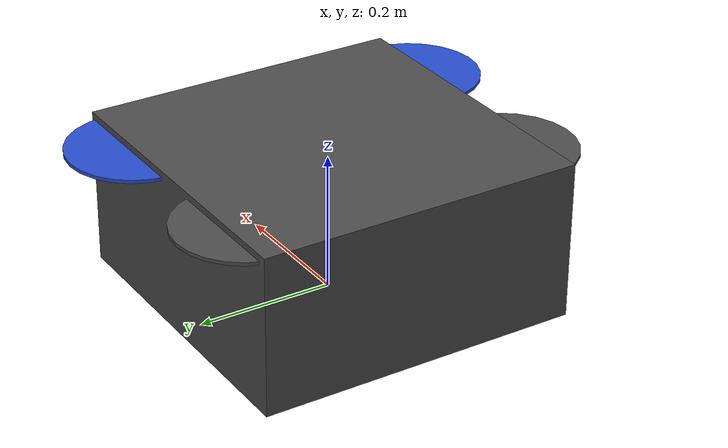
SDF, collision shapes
<?xml version='1.0'?>
<sdf version="1.9">
  <model name="iris_with_ardupilot_with_sensor">
    <include>
      <uri>model://iris_with_standoffs</uri>
    </include>

    <link name='base_link'>
      <pose>0 0 0 0 0 0</pose>
      <inertial>
        <mass>1.0</mass>
        <inertia>
          <ixx>0.1</ixx>
          <iyy>0.1</iyy>
          <izz>0.1</izz>
        </inertia>
      </inertial>
      <collision name='collision'>
        <geometry>
          <box>
            <size>0.1 0.1 0.1</size>
          </box>
        </geometry>
      </collision>
      <visual name='visual'>
        <geometry>
          <box>
            <size>0.1 0.1 0.1</size>
          </box>
        </geometry>
      </visual>
    </link>

	<link name='lidar_link'>
	  <pose relative_to='lidar_joint'>0 0 0 0 0 0</pose>
      <inertial>
        <pose>0 0 0 0 0 0</pose>
        <mass>0.15</mass>
        <inertia>
          <ixx>9.09375e-05</ixx>
          <ixy>0</ixy>
          <ixz>0</ixz>
          <iyy>9.09375e-05</iyy>
          <iyz>0</iyz>
          <izz>9.1875e-05</izz>
        </inertia>
      </inertial>
      <collision name='collision'>
        <pose>0 0 0 0 0 0</pose>
        <geometry>
          <cylinder>
            <length>0.06</length>
            <radius>0.035</radius>
          </cylinder>
        </geometry>
      </collision>

      <sensor name='lidar' type='gpu_lidar'>
        <always_on>1</always_on>
        <update_rate>5</update_rate>
        <visualize>1</visualize>
        <topic>lidar_link/sensor/lidar</topic>
        <pose>0 0 0.045 0 -0 0</pose>
        <ray>
          <scan>
            <horizontal>
              <samples>360</samples>
              <resolution>1</resolution>
              <min_angle>0</min_angle>
              <max_angle>6.28319</max_angle>
            </horizontal>
            <vertical>
              <samples>1</samples>
              <resolution>1</resolution>
              <min_angle>0</min_angle>
              <max_angle>0</max_angle>
            </vertical>
          </scan>
          <range>
            <min>0.1</min>
            <max>12</max>
            <resolution>0.05</resolution>
          </range>
          <noise>
            <type>gaussian</type>
            <mean>0</mean>
            <stddev>0.01</stddev>
          </noise>
        </ray>
      </sensor>
    </link>

  <joint name='lidar_joint' type='revolute'>
      <pose relative_to='base_link'>0.11 0 0.03 0 0 0</pose>
      <parent>base_link</parent>
      <child>lidar_link</child>
      <axis>
        <xyz>0 0 1</xyz>
        <limit>
          <lower>0</lower>
          <upper>0</upper>
          <effort>0</effort>
          <velocity>0</velocity>
        </limit>
        <dynamics>
          <damping>1.0</damping>
        </dynamics>

    </axis>
    </joint>

    <link name='sonar_front_link'>
      <pose relative_to='sonar_front_joint'>0 0 0 0 0 0</pose>
      <inertial>
        <pose>0 0 0 0 0 0</pose>
        <mass>0.02</mass>
        <inertia>
          <ixx>3.04167e-06</ixx>
          <ixy>0</ixy>
          <ixz>0</ixz>
          <iyy>7.5e-07</iyy>
          <iyz>0</iyz>
          <izz>3.04167e-06</izz>
        </inertia>
      </inertial>
      <collision name='collision'>
        <pose>0 0 0 0 0 0</pose>
        <geometry>
          <box>
            <size>0.015 0.04 0.015</size>
          </box>
        </geometry>
      </collision>

      <sensor name='sonar' type='gpu_lidar'>
        <always_on>1</always_on>
        <update_rate>20</update_rate>
        <visualize>1</visualize>
        <topic>sonar_front_link/sensor/sonar</topic>
        <pose>0 0 0 0 0 0</pose>
        <ray>
          <scan>
            <horizontal>
              <samples>5</samples>
              <resolution>1</resolution>
              <min_angle>-0.14835</min_angle>
              <max_angle>0.14835</max_angle>
            </horizontal>
            <vertical>
              <samples>3</samples>
              <resolution>1</resolution>
              <min_angle>0</min_angle>
              <max_angle>0.14835</max_angle>
            </vertical>
          </scan>
          <range>
            <min>0.01</min>
            <max>4</max>
            <resolution>0.02</resolution>
          </range>
          <noise>
            <type>gaussian</type>
            <mean>0.1</mean>
            <stddev>0.005</stddev>
          </noise>
        </ray>
      </sensor>
    </link>

    <joint name='sonar_front_joint' type='revolute'>
    <pose relative_to='base_link'>0.225 0 0.01 0 0 0</pose>
      <parent>base_link</parent>
      <child>sonar_front_link</child>
      <axis>
        <xyz>0 0 1</xyz>
        <limit>
          <lower>0</lower>
          <upper>0</upper>
          <effort>0</effort>
          <velocity>0</velocity>
        </limit>
        <dynamics>
          <damping>1.0</damping>
        </dynamics>

      </axis>
    </joint>

    <!-- plugins -->
    <plugin filename="gz-sim-joint-state-publisher-system"
      name="gz::sim::systems::JointStatePublisher">
    </plugin>
    <plugin filename="gz-sim-lift-drag-system"
        name="gz::sim::systems::LiftDrag">
      <a0>0.3</a0>
      <alpha_stall>1.4</alpha_stall>
      <cla>4.2500</cla>
      <cda>0.10</cda>
      <cma>0.0</cma>
      <cla_stall>-0.025</cla_stall>
      <cda_stall>0.0</cda_stall>
      <cma_stall>0.0</cma_stall>
      <area>0.002</area>
      <air_density>1.2041</air_density>
      <cp>0.084 0 0</cp>
      <forward>0 1 0</forward>
      <upward>0 0 1</upward>
      <link_name>iris_with_standoffs::rotor_0</link_name>
    </plugin>
    <plugin filename="gz-sim-lift-drag-system"
        name="gz::sim::systems::LiftDrag">
      <a0>0.3</a0>
      <alpha_stall>1.4</alpha_stall>
      <cla>4.2500</cla>
      <cda>0.10</cda>
      <cma>0.0</cma>
      <cla_stall>-0.025</cla_stall>
      <cda_stall>0.0</cda_stall>
      <cma_stall>0.0</cma_stall>
      <area>0.002</area>
      <air_density>1.2041</air_density>
      <cp>-0.084 0 0</cp>
      <forward>0 -1 0</forward>
      <upward>0 0 1</upward>
      <link_name>iris_with_standoffs::rotor_0</link_name>
    </plugin>

    <plugin filename="gz-sim-lift-drag-system"
        name="gz::sim::systems::LiftDrag">
      <a0>0.3</a0>
      <alpha_stall>1.4</alpha_stall>
      <cla>4.2500</cla>
      <cda>0.10</cda>
      <cma>0.0</cma>
      <cla_stall>-0.025</cla_stall>
      <cda_stall>0.0</cda_stall>
      <cma_stall>0.0</cma_stall>
      <area>0.002</area>
      <air_density>1.2041</air_density>
      <cp>0.084 0 0</cp>
      <forward>0 1 0</forward>
      <upward>0 0 1</upward>
      <link_name>iris_with_standoffs::rotor_1</link_name>
    </plugin>
    <plugin filename="gz-sim-lift-drag-system"
        name="gz::sim::systems::LiftDrag">
      <a0>0.3</a0>
      <alpha_stall>1.4</alpha_stall>
      <cla>4.2500</cla>
      <cda>0.10</cda>
      <cma>0.0</cma>
      <cla_stall>-0.025</cla_stall>
      <cda_stall>0.0</cda_stall>
      <cma_stall>0.0</cma_stall>
      <area>0.002</area>
      <air_density>1.2041</air_density>
      <cp>-0.084 0 0</cp>
      <forward>0 -1 0</forward>
      <upward>0 0 1</upward>
      <link_name>iris_with_standoffs::rotor_1</link_name>
    </plugin>

    <plugin filename="gz-sim-lift-drag-system"
        name="gz::sim::systems::LiftDrag">
      <a0>0.3</a0>
      <alpha_stall>1.4</alpha_stall>
      <cla>4.2500</cla>
      <cda>0.10</cda>
      <cma>0.0</cma>
      <cla_stall>-0.025</cla_stall>
      <cda_stall>0.0</cda_stall>
      <cma_stall>0.0</cma_stall>
      <area>0.002</area>
      <air_density>1.2041</air_density>
      <cp>0.084 0 0</cp>
      <forward>0 -1 0</forward>
      <upward>0 0 1</upward>
      <link_name>iris_with_standoffs::rotor_2</link_name>
    </plugin>
    <plugin filename="gz-sim-lift-drag-system"
        name="gz::sim::systems::LiftDrag">
      <a0>0.3</a0>
      <alpha_stall>1.4</alpha_stall>
      <cla>4.2500</cla>
      <cda>0.10</cda>
      <cma>0.0</cma>
      <cla_stall>-0.025</cla_stall>
      <cda_stall>0.0</cda_stall>
      <cma_stall>0.0</cma_stall>
      <area>0.002</area>
      <air_density>1.2041</air_density>
      <cp>-0.084 0 0</cp>
      <forward>0 1 0</forward>
      <upward>0 0 1</upward>
      <link_name>iris_with_standoffs::rotor_2</link_name>
    </plugin>

    <plugin filename="gz-sim-lift-drag-system"
        name="gz::sim::systems::LiftDrag">
      <a0>0.3</a0>
      <alpha_stall>1.4</alpha_stall>
      <cla>4.2500</cla>
      <cda>0.10</cda>
      <cma>0.0</cma>
      <cla_stall>-0.025</cla_stall>
      <cda_stall>0.0</cda_stall>
      <cma_stall>0.0</cma_stall>
      <area>0.002</area>
      <air_density>1.2041</air_density>
      <cp>0.084 0 0</cp>
      <forward>0 -1 0</forward>
      <upward>0 0 1</upward>
      <link_name>iris_with_standoffs::rotor_3</link_name>
    </plugin>
    <plugin filename="gz-sim-lift-drag-system"
        name="gz::sim::systems::LiftDrag">
      <a0>0.3</a0>
      <alpha_stall>1.4</alpha_stall>
      <cla>4.2500</cla>
      <cda>0.10</cda>
      <cma>0.0</cma>
      <cla_stall>-0.025</cla_stall>
      <cda_stall>0.0</cda_stall>
      <cma_stall>0.0</cma_stall>
      <area>0.002</area>
      <air_density>1.2041</air_density>
      <cp>-0.084 0 0</cp>
      <forward>0 1 0</forward>
      <upward>0 0 1</upward>
      <link_name>iris_with_standoffs::rotor_3</link_name>
    </plugin>

    <plugin filename="gz-sim-apply-joint-force-system"
      name="gz::sim::systems::ApplyJointForce">
      <joint_name>iris_with_standoffs::rotor_0_joint</joint_name>
    </plugin>
    <plugin filename="gz-sim-apply-joint-force-system"
      name="gz::sim::systems::ApplyJointForce">
      <joint_name>iris_with_standoffs::rotor_1_joint</joint_name>
    </plugin>
    <plugin filename="gz-sim-apply-joint-force-system"
      name="gz::sim::systems::ApplyJointForce">
      <joint_name>iris_with_standoffs::rotor_2_joint</joint_name>
    </plugin>
    <plugin filename="gz-sim-apply-joint-force-system"
      name="gz::sim::systems::ApplyJointForce">
      <joint_name>iris_with_standoffs::rotor_3_joint</joint_name>
    </plugin>

    <plugin name="ArduPilotPlugin"
      filename="ArduPilotPlugin">
      <!-- Port settings -->
      <fdm_addr>127.0.0.1</fdm_addr>
      <fdm_port_in>9002</fdm_port_in>
      <connectionTimeoutMaxCount>5</connectionTimeoutMaxCount>
      <lock_step>1</lock_step>
      <have_32_channels>0</have_32_channels>

      <!-- Frame conventions
        Require by ArduPilot: change model and gazebo from XYZ to XY-Z coordinates
      -->
      <modelXYZToAirplaneXForwardZDown degrees="true">0 0 0 180 0 0</modelXYZToAirplaneXForwardZDown>
      <gazeboXYZToNED degrees="true">0 0 0 180 0 90</gazeboXYZToNED>

      <!-- Sensors -->

      <!-- Sensors -->
      <!-- Sensors -->
      <imuName>iris_with_standoffs::imu_link::imu_sensor</imuName>

      <!--
          incoming control command [0, 1]
          so offset it by 0 to get [0, 1]
          and divide max target by 1.
          offset = 0
          multiplier = 838 max rpm / 1 = 838
        -->
      <control channel="0">
        <jointName>iris_with_standoffs::rotor_0_joint</jointName>
        <useForce>1</useForce>
        <multiplier>838</multiplier>
        <offset>0</offset>
        <servo_min>1100</servo_min>
        <servo_max>1900</servo_max>
        <type>VELOCITY</type>
        <p_gain>0.20</p_gain>
        <i_gain>0</i_gain>
        <d_gain>0</d_gain>
        <i_max>0</i_max>
        <i_min>0</i_min>
        <cmd_max>2.5</cmd_max>
        <cmd_min>-2.5</cmd_min>
        <controlVelocitySlowdownSim>1</controlVelocitySlowdownSim>
      </control>

      <control channel="1">
        <jointName>iris_with_standoffs::rotor_1_joint</jointName>
        <useForce>1</useForce>
        <multiplier>838</multiplier>
        <offset>0</offset>
        <servo_min>1100</servo_min>
        <servo_max>1900</servo_max>
        <type>VELOCITY</type>
        <p_gain>0.20</p_gain>
        <i_gain>0</i_gain>
        <d_gain>0</d_gain>
        <i_max>0</i_max>
        <i_min>0</i_min>
        <cmd_max>2.5</cmd_max>
        <cmd_min>-2.5</cmd_min>
        <controlVelocitySlowdownSim>1</controlVelocitySlowdownSim>
      </control>

      <control channel="2">
        <jointName>iris_with_standoffs::rotor_2_joint</jointName>
        <useForce>1</useForce>
        <multiplier>-838</multiplier>
        <offset>0</offset>
        <servo_min>1100</servo_min>
        <servo_max>1900</servo_max>
        <type>VELOCITY</type>
        <p_gain>0.20</p_gain>
        <i_gain>0</i_gain>
        <d_gain>0</d_gain>
        <i_max>0</i_max>
        <i_min>0</i_min>
        <cmd_max>2.5</cmd_max>
        <cmd_min>-2.5</cmd_min>
        <controlVelocitySlowdownSim>1</controlVelocitySlowdownSim>
      </control>

      <control channel="3">
        <jointName>iris_with_standoffs::rotor_3_joint</jointName>
        <useForce>1</useForce>
        <multiplier>-838</multiplier>
        <offset>0</offset>
        <servo_min>1100</servo_min>
        <servo_max>1900</servo_max>
        <type>VELOCITY</type>
        <p_gain>0.20</p_gain>
        <i_gain>0</i_gain>
        <d_gain>0</d_gain>
        <i_max>0</i_max>
        <i_min>0</i_min>
        <cmd_max>2.5</cmd_max>
        <cmd_min>-2.5</cmd_min>
        <controlVelocitySlowdownSim>1</controlVelocitySlowdownSim>
      </control>
          </plugin>

      <sensor>
        <type>sonar</type>
        <index>1</index>
        <topic>sonar_front_link/sensor/sonar</topic>
      </sensor>

  </model>
</sdf>

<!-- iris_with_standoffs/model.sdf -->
<sdf version='1.6'>
  <model name='iris'>
    <pose>0 0 0.194923 0 0 0</pose>
    <link name='base_link'>
      <velocity_decay>
        <linear>0.0</linear>
        <angular>0.0</angular>
      </velocity_decay>
      <inertial>
        <pose>0 0 0 0 0 0</pose>
        <mass>1.5</mass>
        <inertia>
          <ixx>0.008</ixx>
          <ixy>0</ixy>
          <ixz>0</ixz>
          <iyy>0.015</iyy>
          <iyz>0</iyz>
          <izz>0.017</izz>
        </inertia>
      </inertial>
      <collision name='base_link_collision'>
        <pose>0 0 -0.08 0 0 0</pose>
        <geometry>
          <box>
            <size>0.47 0.47 0.23</size>
          </box>
        </geometry>
        <surface>
          <contact>
            <ode>
              <max_vel>100.0</max_vel>
              <min_depth>0.001</min_depth>
            </ode>
          </contact>
          <friction>
            <ode>
              <mu>1.0</mu>
              <mu2>1.0</mu2>
            </ode>
          </friction>
        </surface>
      </collision>
      <visual name='base_link_visual'>
        <geometry>
          <mesh>
            <uri>model://../model_source/models/iris_with_standoffs/meshes/iris.dae</uri>
          </mesh>
        </geometry>
        <material>
          <script>
            <name>Gazebo/DarkGrey</name>
          </script>
        </material>
      </visual>

      <visual name='front_left_leg_visual'>
        <pose>0.123 0.22 -0.11 0 0 0</pose>
        <geometry>
          <cylinder>
            <radius>0.005</radius>
            <length>0.17</length>
          </cylinder>
        </geometry>
        <material>
          <script>
            <name>Gazebo/FlatBlack</name>
            <uri>file://media/materials/scripts/gazebo.material</uri>
          </script>
        </material>
      </visual>
      <visual name='front_right_leg_visual'>
        <pose>0.123 -0.22 -0.11 0 0 0</pose>
        <geometry>
          <cylinder>
            <radius>0.005</radius>
            <length>0.17</length>
          </cylinder>
        </geometry>
        <material>
          <script>
            <name>Gazebo/FlatBlack</name>
            <uri>file://media/materials/scripts/gazebo.material</uri>
          </script>
        </material>
      </visual>
      <visual name='rear_left_leg_visual'>
        <pose>-0.140 0.21 -0.11 0 0 0</pose>
        <geometry>
          <cylinder>
            <radius>0.005</radius>
            <length>0.17</length>
          </cylinder>
        </geometry>
        <material>
          <script>
            <name>Gazebo/FlatBlack</name>
            <uri>file://media/materials/scripts/gazebo.material</uri>
          </script>
        </material>
      </visual>
      <visual name='rear_right_leg_visual'>
        <pose>-0.140 -0.21 -0.11 0 0 0</pose>
        <geometry>
          <cylinder>
            <radius>0.005</radius>
            <length>0.17</length>
          </cylinder>
        </geometry>
        <material>
          <script>
            <name>Gazebo/FlatBlack</name>
            <uri>file://media/materials/scripts/gazebo.material</uri>
          </script>
        </material>
      </visual>
    </link>
    <link name='iris/ground_truth/odometry_sensorgt_link'>
      <pose>0 0 0 0 -0 0</pose>
      <inertial>
        <pose>0 0 0 0 -0 0</pose>
        <mass>0.15</mass>
        <inertia>
          <ixx>0.0001</ixx>
          <ixy>0</ixy>
          <ixz>0</ixz>
          <iyy>0.0002</iyy>
          <iyz>0</iyz>
          <izz>0.0002</izz>
        </inertia>
      </inertial>
    </link>
    <joint name='iris/ground_truth/odometry_sensorgt_joint' type='revolute'>
      <child>iris/ground_truth/odometry_sensorgt_link</child>
      <parent>base_link</parent>
      <axis>
        <xyz>0 0 1</xyz>
        <limit>
          <lower>0</lower>
          <upper>0</upper>
          <effort>0</effort>
          <velocity>0</velocity>
        </limit>
        <dynamics>
          <damping>1.0</damping>
        </dynamics>
        <use_parent_model_frame>1</use_parent_model_frame>
      </axis>
      <physics>
        <ode>
          <implicit_spring_damper>1</implicit_spring_damper>
        </ode>
      </physics>
    </joint>
    <link name='iris/imu_link'>
      <inertial>
        <pose>0 0 0 0 0 0</pose>
        <mass>0.15</mass>
        <inertia>
          <ixx>0.00001</ixx>
          <ixy>0</ixy>
          <ixz>0</ixz>
          <iyy>0.00002</iyy>
          <iyz>0</iyz>
          <izz>0.00002</izz>
        </inertia>
      </inertial>
      <sensor name="imu_sensor" type="imu">
        <pose>0 0 0 3.141593 0 0</pose>
        <always_on>1</always_on>
        <update_rate>1000.0</update_rate>
      </sensor>
    </link>
    <joint name='iris/imu_joint' type='revolute'>
      <child>iris/imu_link</child>
      <parent>base_link</parent>
      <axis>
        <xyz>0 0 1</xyz>
        <limit>
          <lower>0</lower>
          <upper>0</upper>
          <effort>0</effort>
          <velocity>0</velocity>
        </limit>
        <dynamics>
          <damping>1.0</damping>
        </dynamics>
        <use_parent_model_frame>1</use_parent_model_frame>
      </axis>
      <physics>
        <ode>
          <implicit_spring_damper>1</implicit_spring_damper>
        </ode>
      </physics>
    </joint>
    <link name='rotor_0'>
      <pose>0.13 -0.22 0.023 0 -0 0</pose>
      <inertial>
        <pose>0 0 0 0 -0 0</pose>
        <mass>0.025</mass>
        <inertia>
          <ixx>9.75e-06</ixx>
          <ixy>0</ixy>
          <ixz>0</ixz>
          <iyy>0.000166704</iyy>
          <iyz>0</iyz>
          <izz>0.000167604</izz>
        </inertia>
      </inertial>
      <collision name='rotor_0_collision'>
        <pose>0 0 0 0 -0 0</pose>
        <geometry>
          <cylinder>
            <length>0.005</length>
            <radius>0.1</radius>
          </cylinder>
        </geometry>
        <surface>
          <contact>
            <ode/>
          </contact>
          <friction>
            <ode/>
          </friction>
        </surface>
      </collision>
      <visual name='rotor_0_visual'>
        <pose>0 0 0 0 -0 0</pose>
        <geometry>
          <mesh>
            <scale>1 1 1</scale>
            <uri>model://../model_source/models/iris_with_standoffs/meshes/iris_prop_ccw.dae</uri>
          </mesh>
        </geometry>
        <material>
          <script>
            <name>Gazebo/Blue</name>
            <uri>__default__</uri>
          </script>
        </material>
      </visual>
      <gravity>1</gravity>
      <velocity_decay/>
      <self_collide>0</self_collide>
    </link>
    <joint name='rotor_0_joint' type='revolute'>
      <child>rotor_0</child>
      <parent>base_link</parent>
      <axis>
        <xyz>0 0 1</xyz>
        <limit>
          <lower>-1e+16</lower>
          <upper>1e+16</upper>
        </limit>
        <dynamics>
          <damping>0.004</damping>
        </dynamics>
        <use_parent_model_frame>1</use_parent_model_frame>
      </axis>
      <physics>
        <ode>
          <implicit_spring_damper>1</implicit_spring_damper>
        </ode>
      </physics>
    </joint>
    <link name='rotor_1'>
      <pose>-0.13 0.2 0.023 0 -0 0</pose>
      <inertial>
        <pose>0 0 0 0 -0 0</pose>
        <mass>0.025</mass>
        <inertia>
          <ixx>9.75e-06</ixx>
          <ixy>0</ixy>
          <ixz>0</ixz>
          <iyy>0.000166704</iyy>
          <iyz>0</iyz>
          <izz>0.000167604</izz>
        </inertia>
      </inertial>
      <collision name='rotor_1_collision'>
        <pose>0 0 0 0 -0 0</pose>
        <geometry>
          <cylinder>
            <length>0.005</length>
            <radius>0.1</radius>
          </cylinder>
        </geometry>
        <surface>
          <contact>
            <ode/>
          </contact>
          <friction>
            <ode/>
          </friction>
        </surface>
      </collision>
      <visual name='rotor_1_visual'>
        <pose>0 0 0 0 -0 0</pose>
        <geometry>
          <mesh>
            <scale>1 1 1</scale>
            <uri>model://../model_source/models/iris_with_standoffs/meshes/iris_prop_ccw.dae</uri>
          </mesh>
        </geometry>
        <material>
          <script>
            <name>Gazebo/DarkGrey</name>
            <uri>__default__</uri>
          </script>
        </material>
      </visual>
      <gravity>1</gravity>
      <velocity_decay/>
      <self_collide>0</self_collide>
    </link>
    <joint name='rotor_1_joint' type='revolute'>
      <child>rotor_1</child>
      <parent>base_link</parent>
      <axis>
        <xyz>0 0 1</xyz>
        <limit>
          <lower>-1e+16</lower>
          <upper>1e+16</upper>
        </limit>
        <dynamics>
          <damping>0.004</damping>
        </dynamics>
        <use_parent_model_frame>1</use_parent_model_frame>
      </axis>
      <physics>
        <ode>
          <implicit_spring_damper>1</implicit_spring_damper>
        </ode>
      </physics>
    </joint>
    <link name='rotor_2'>
      <pose>0.13 0.22 0.023 0 -0 0</pose>
      <inertial>
        <pose>0 0 0 0 -0 0</pose>
        <mass>0.025</mass>
        <inertia>
          <ixx>9.75e-06</ixx>
          <ixy>0</ixy>
          <ixz>0</ixz>
          <iyy>0.000166704</iyy>
          <iyz>0</iyz>
          <izz>0.000167604</izz>
        </inertia>
      </inertial>
      <collision name='rotor_2_collision'>
        <pose>0 0 0 0 -0 0</pose>
        <geometry>
          <cylinder>
            <length>0.005</length>
            <radius>0.1</radius>
          </cylinder>
        </geometry>
        <surface>
          <contact>
            <ode/>
          </contact>
          <friction>
            <ode/>
          </friction>
        </surface>
      </collision>
      <visual name='rotor_2_visual'>
        <pose>0 0 0 0 -0 0</pose>
        <geometry>
          <mesh>
            <scale>1 1 1</scale>
            <uri>model://../model_source/models/iris_with_standoffs/meshes/iris_prop_cw.dae</uri>
          </mesh>
        </geometry>
        <material>
          <script>
            <name>Gazebo/Blue</name>
            <uri>__default__</uri>
          </script>
        </material>
      </visual>
      <gravity>1</gravity>
      <velocity_decay/>
      <self_collide>0</self_collide>
    </link>
    <joint name='rotor_2_joint' type='revolute'>
      <child>rotor_2</child>
      <parent>base_link</parent>
      <axis>
        <xyz>0 0 1</xyz>
        <limit>
          <lower>-1e+16</lower>
          <upper>1e+16</upper>
        </limit>
        <dynamics>
          <damping>0.004</damping>
        </dynamics>
        <use_parent_model_frame>1</use_parent_model_frame>
      </axis>
      <physics>
        <ode>
          <implicit_spring_damper>1</implicit_spring_damper>
        </ode>
      </physics>
    </joint>
    <link name='rotor_3'>
      <pose>-0.13 -0.2 0.023 0 -0 0</pose>
      <inertial>
        <pose>0 0 0 0 -0 0</pose>
        <mass>0.025</mass>
        <inertia>
          <ixx>9.75e-06</ixx>
          <ixy>0</ixy>
          <ixz>0</ixz>
          <iyy>0.000166704</iyy>
          <iyz>0</iyz>
          <izz>0.000167604</izz>
        </inertia>
      </inertial>
      <collision name='rotor_3_collision'>
        <pose>0 0 0 0 -0 0</pose>
        <geometry>
          <cylinder>
            <length>0.005</length>
            <radius>0.1</radius>
          </cylinder>
        </geometry>
        <surface>
          <contact>
            <ode/>
          </contact>
          <friction>
            <ode/>
          </friction>
        </surface>
      </collision>
      <visual name='rotor_3_visual'>
        <pose>0 0 0 0 -0 0</pose>
        <geometry>
          <mesh>
            <scale>1 1 1</scale>
            <uri>model://../model_source/models/iris_with_standoffs/meshes/iris_prop_cw.dae</uri>
          </mesh>
        </geometry>
        <material>
          <script>
            <name>Gazebo/DarkGrey</name>
            <uri>__default__</uri>
          </script>
        </material>
      </visual>
      <gravity>1</gravity>
      <velocity_decay/>
      <self_collide>0</self_collide>
    </link>
    <joint name='rotor_3_joint' type='revolute'>
      <child>rotor_3</child>
      <parent>base_link</parent>
      <axis>
        <xyz>0 0 1</xyz>
        <limit>
          <lower>-1e+16</lower>
          <upper>1e+16</upper>
        </limit>
        <dynamics>
          <damping>0.004</damping>
        </dynamics>
        <use_parent_model_frame>1</use_parent_model_frame>
      </axis>
      <physics>
        <ode>
          <implicit_spring_damper>1</implicit_spring_damper>
        </ode>
      </physics>
    </joint>
    <static>0</static>
  </model>
</sdf>
